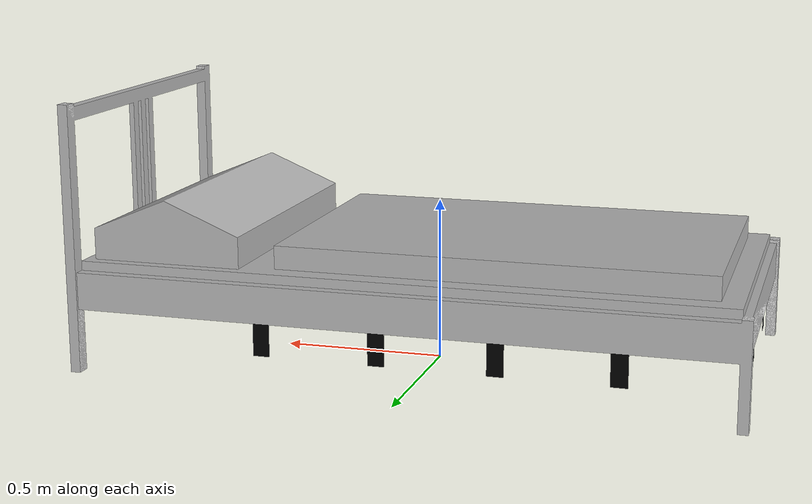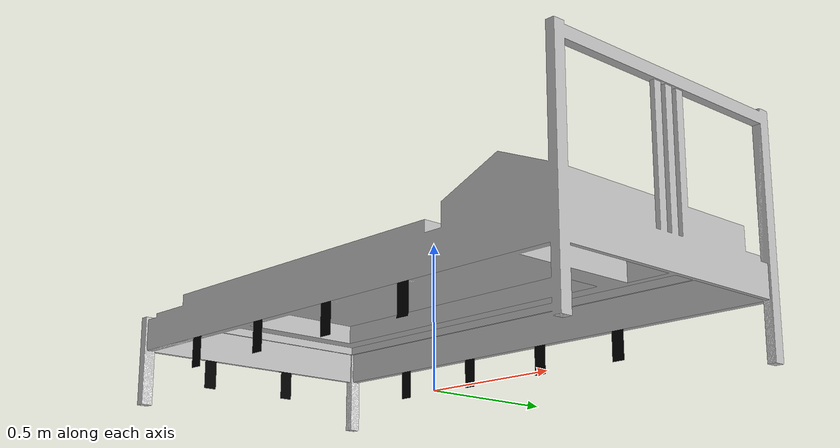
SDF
<?xml version="1.0" ?>
<sdf version="1.5">

  <model name="bed">
    <link name="base_link">
      <inertial>
        <mass>20.0</mass>
        <inertia>
          <ixx>1.0</ixx>
          <ixy>0.0</ixy>
          <ixz>0.0</ixz>
          <iyy>1.0</iyy>
          <iyz>0.0</iyz>
          <izz>1.0</izz>
        </inertia>
      </inertial>
      <collision name="collision">
        <geometry>
          <mesh>
            <uri>model://bed/bed.dae</uri>
          </mesh>
        </geometry>
      </collision>
      <visual name="visual">
        <geometry>
          <mesh>
            <uri>model://bed/bed.dae</uri>
          </mesh>
        </geometry>
      </visual>
    </link>
  </model>
</sdf>
